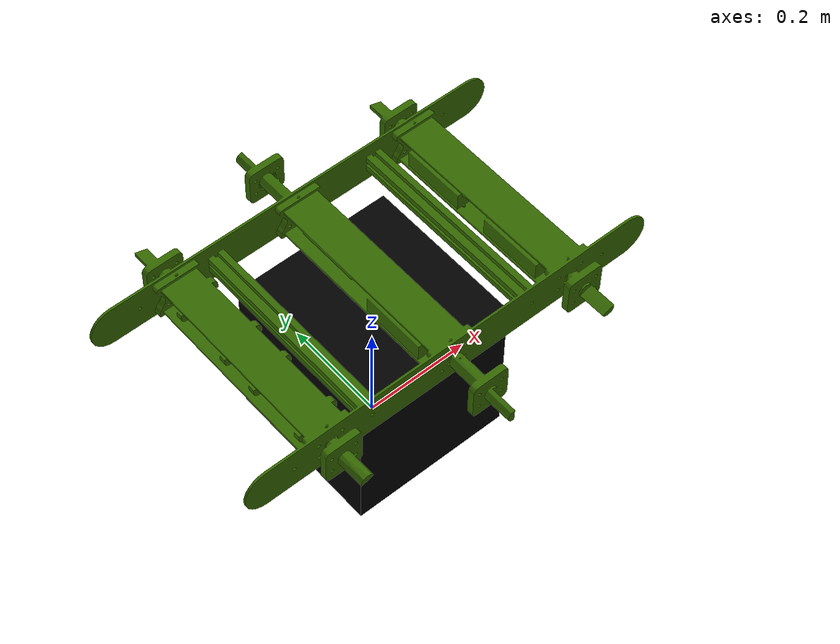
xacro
<?xml version="1.0" ?>
<robot name="base" xmlns:xacro="http://ros.org/wiki/xacro">

<xacro:property name="w_radius" value="${108.743/1e3}"/>

<link name="base_footprint">
    <visual>
        <origin xyz="0 0 0.1500" rpy="0 0 0"/>
        <geometry>
            <box size="0.3000 0.3000 0.3000"/>
        </geometry>
        <material name="transparente">
            <color rgba="0 0 0 1"/>
        </material>
    </visual>
    <collision>
        <origin xyz="0 0 0.1500" rpy="0 0 0"/>
        <geometry>
            <box size = "0.3 0.3 0.3" />
        </geometry>
    </collision>
    <inertial>
        <origin xyz="0 0 .15" rpy="0 0 0"/>
         <mass value="1000.0001"/>
         <inertia   ixx="100.0001"    ixy="0"         ixz="0"
                                    iyy="100.0001"    iyz="0"
                                                    izz="100.0001" />
    </inertial>
</link>

<joint name="footprint_base_joint" type="fixed">
    <parent link="base_footprint"/>
    <child link="base_link"/>
    <origin xyz="0 0 ${0.3 + 0.1/2}" rpy="0 0 0"/>
</joint>

<link name="base_link">

    <inertial>
        <origin xyz="${0/1e3} 0 ${1.417/1000}" rpy="${pi/2} 0 ${pi/2}"/>
        <mass value="5.771"/>
        <inertia ixx="${207161.695/(1e6)}"
                 ixy="${0}"                 iyy="${117325.409/(1e6)}"
                 ixz="${0}"                 iyz="${0}"                  izz="${320415.187/(1e6)}"/>
    </inertial>
    <visual>
        <origin xyz="0 0 0" rpy="${pi/2} 0 0"/>
        <geometry>
            <mesh filename="package://hexapodo_description/meshes/chassis_piezas.stl" scale="0.01 0.01 0.01"/>
        </geometry>
        <material name="base_link_material">
            <color rgba="${51/255} ${102/255} ${0/255} 1"/>
        </material>
    </visual>
    <collision>
        <origin xyz="0 0 0" rpy="${pi/2} 0 0"/>
        <geometry>
            <mesh filename="package://hexapodo_description/meshes/chassis_piezas.stl" scale="0.01 0.01 0.01"/>
        </geometry>
    </collision>

</link>

<gazebo reference="base_link">
    <material>Gazebo/Green</material>
</gazebo>

</robot>
